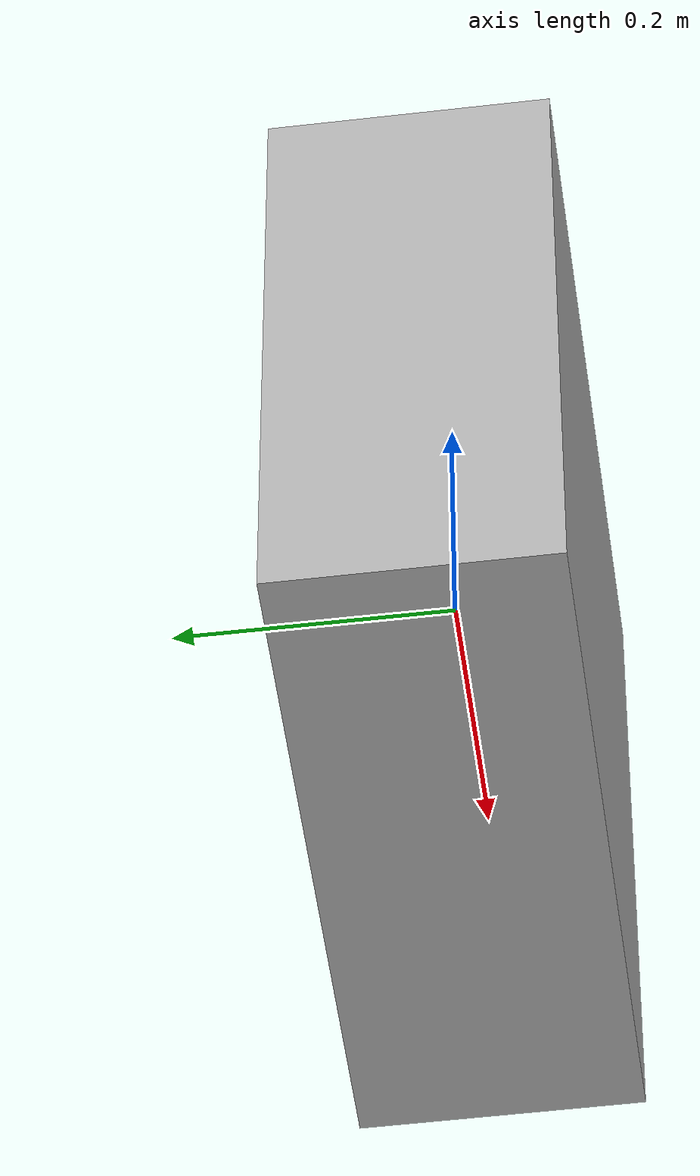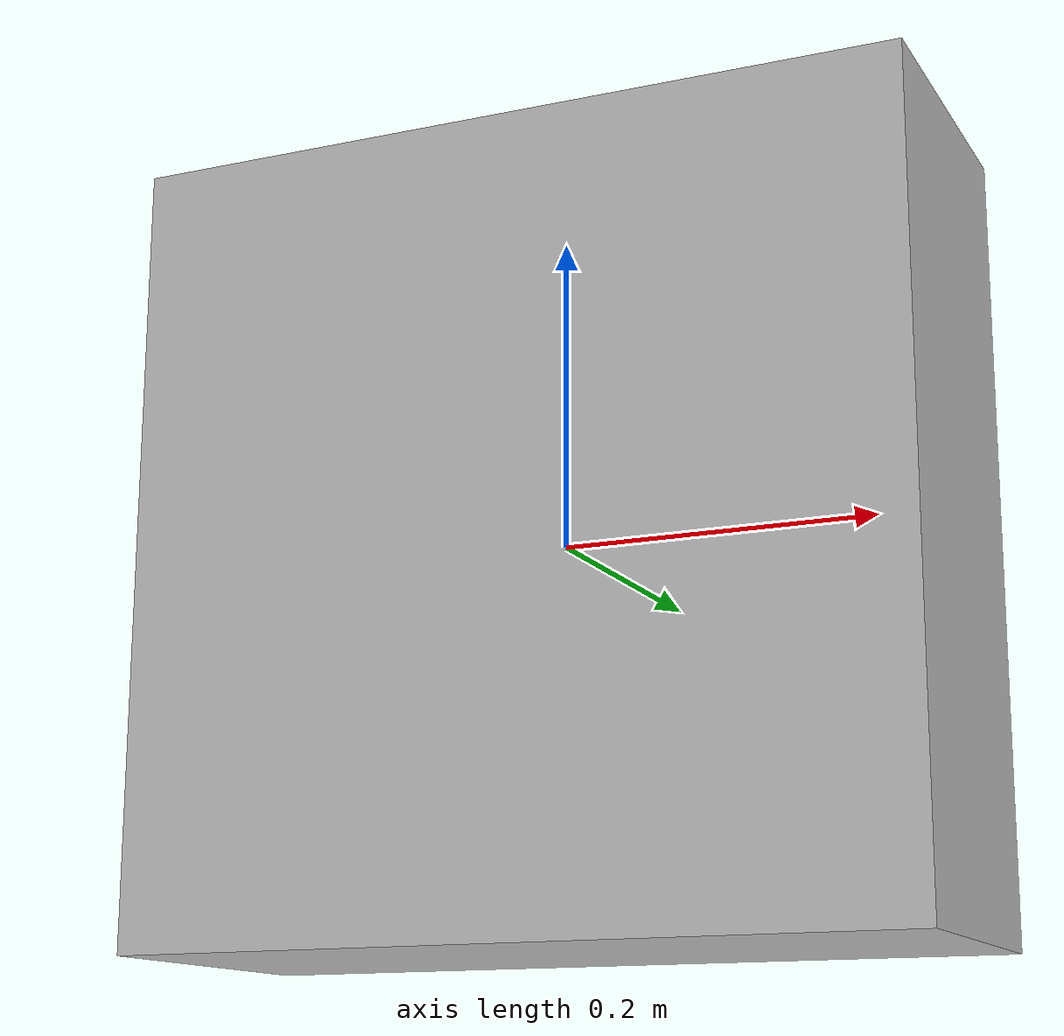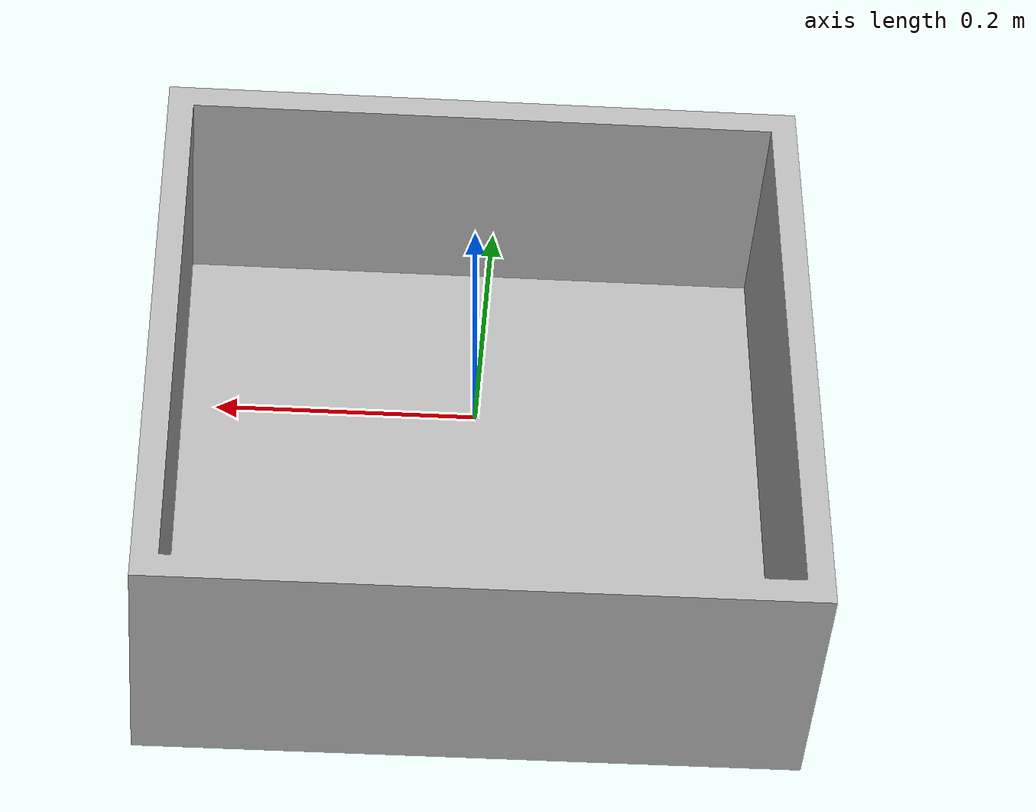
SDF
<?xml version="1.0" ?>
<sdf version="1.8">
  <model name="box_50x50x20">
    <static>true</static>
    <link name="link">

      <visual name="visual">
        <geometry>
          <mesh>
            <uri>meshes/box_50x50x20.obj</uri>
            <scale>1 1 1</scale>
          </mesh>
        </geometry>
      </visual>

      <collision name="collision">
        <geometry>
          <mesh>
            <uri>meshes/box_50x50x20.obj</uri>
            <scale>1 1 1</scale>
          </mesh>
        </geometry>
      </collision>

    </link>
  </model>
</sdf>
